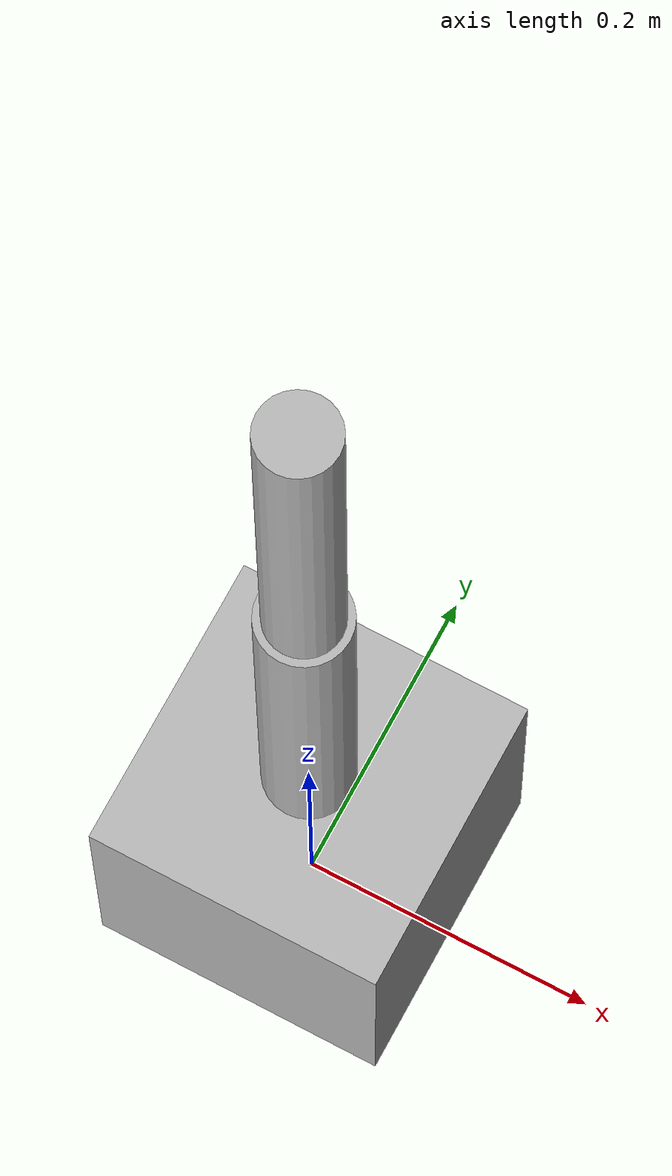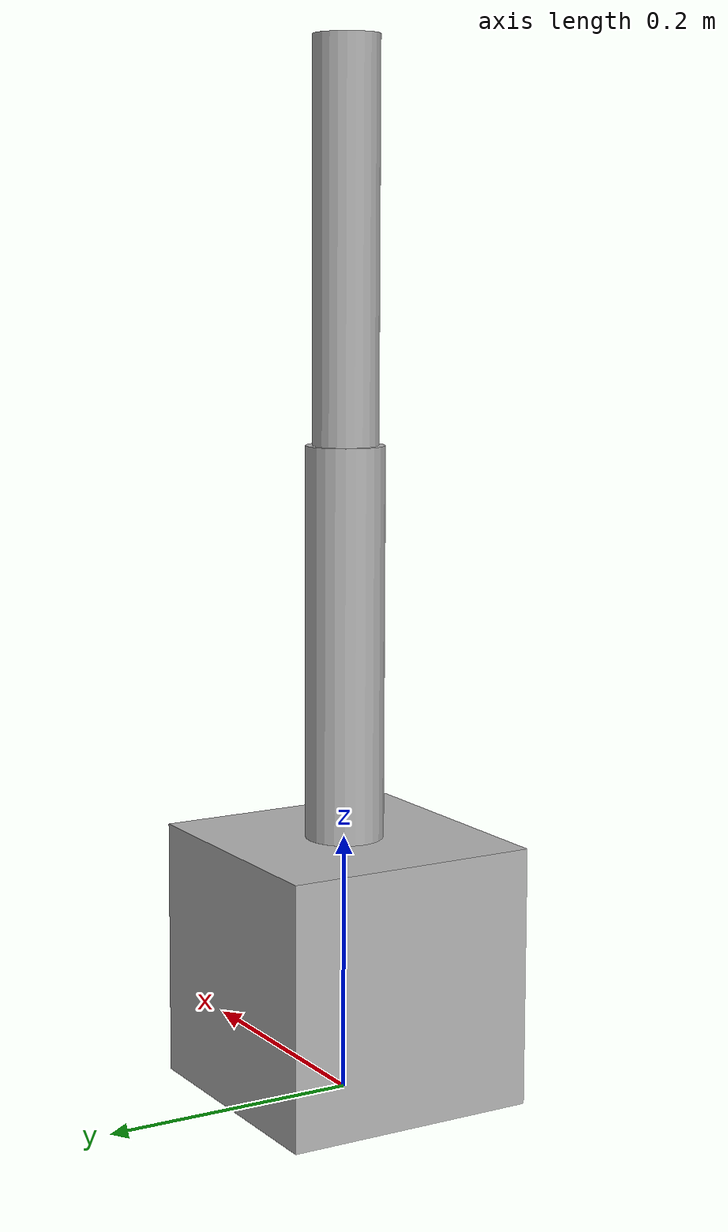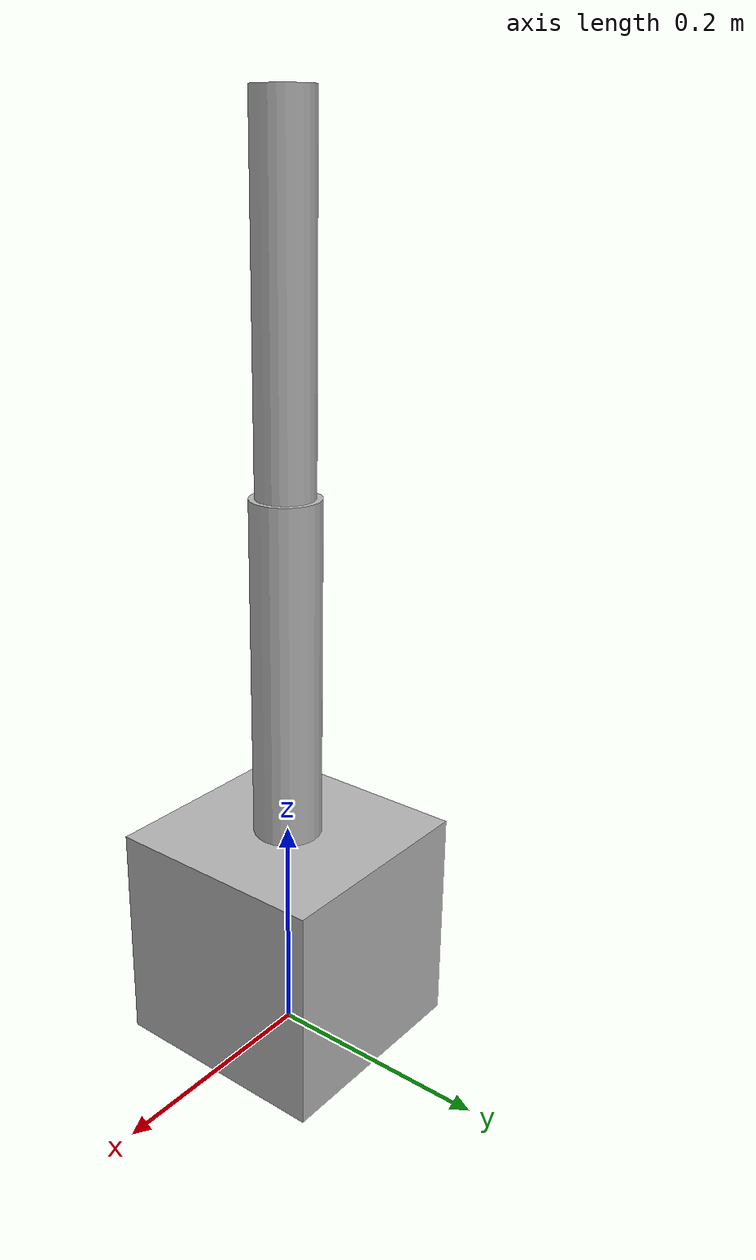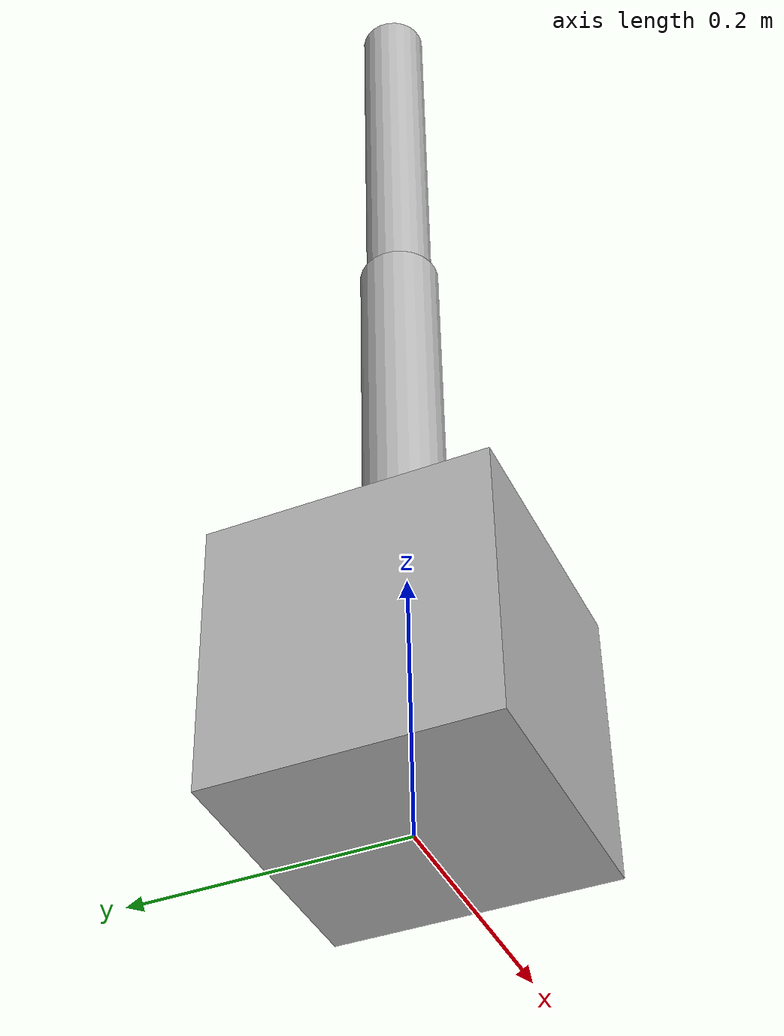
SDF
<sdf version='1.7'>
  <model name='two_dof_arm'>
    <link name='base_link'>
      <inertial>
        <pose>0 0 0 0 -0 0</pose>
        <mass>1</mass>
        <inertia>
          <ixx>0.01</ixx>
          <ixy>0</ixy>
          <ixz>0</ixz>
          <iyy>0.01</iyy>
          <iyz>0</iyz>
          <izz>0.01</izz>
        </inertia>
      </inertial>
      <collision name='base_link_collision'>
        <pose>0 0 0.1 0 -0 0</pose>
        <geometry>
          <box>
            <size>0.2 0.2 0.2</size>
          </box>
        </geometry>
      </collision>
      <visual name='base_link_visual'>
        <pose>0 0 0.1 0 -0 0</pose>
        <geometry>
          <box>
            <size>0.2 0.2 0.2</size>
          </box>
        </geometry>
      </visual>
    </link>
    <joint name='joint1' type='revolute'>
      <pose relative_to='base_link'>0 0 0.2 0 -0 0</pose>
      <parent>base_link</parent>
      <child>link1</child>
      <axis>
        <xyz>0 1 0</xyz>
        <limit>
          <lower>-3.14</lower>
          <upper>3.14</upper>
          <effort>10</effort>
          <velocity>3</velocity>
        </limit>
        <dynamics>
          <spring_reference>0</spring_reference>
          <spring_stiffness>0</spring_stiffness>
        </dynamics>
      </axis>
    </joint>
    <link name='link1'>
      <pose relative_to='joint1'>0 0 0 0 -0 0</pose>
      <inertial>
        <pose>0 0 0.15 0 -0 0</pose>
        <mass>0.5</mass>
        <inertia>
          <ixx>0.005</ixx>
          <ixy>0</ixy>
          <ixz>0</ixz>
          <iyy>0.005</iyy>
          <iyz>0</iyz>
          <izz>0.005</izz>
        </inertia>
      </inertial>
      <collision name='link1_collision'>
        <pose>0 0 0.15 0 -0 0</pose>
        <geometry>
          <cylinder>
            <length>0.3</length>
            <radius>0.03</radius>
          </cylinder>
        </geometry>
      </collision>
      <visual name='link1_visual'>
        <pose>0 0 0.15 0 -0 0</pose>
        <geometry>
          <cylinder>
            <length>0.3</length>
            <radius>0.03</radius>
          </cylinder>
        </geometry>
      </visual>
    </link>
    <joint name='joint2' type='revolute'>
      <pose relative_to='link1'>0 0 0.3 0 -0 0</pose>
      <parent>link1</parent>
      <child>link2</child>
      <axis>
        <xyz>0 1 0</xyz>
        <limit>
          <lower>-2</lower>
          <upper>2</upper>
          <effort>10</effort>
          <velocity>3</velocity>
        </limit>
        <dynamics>
          <spring_reference>0</spring_reference>
          <spring_stiffness>0</spring_stiffness>
        </dynamics>
      </axis>
    </joint>
    <link name='link2'>
      <pose relative_to='joint2'>0 0 0 0 -0 0</pose>
      <inertial>
        <pose>0 0 0.15 0 -0 0</pose>
        <mass>0.3</mass>
        <inertia>
          <ixx>0.003</ixx>
          <ixy>0</ixy>
          <ixz>0</ixz>
          <iyy>0.003</iyy>
          <iyz>0</iyz>
          <izz>0.003</izz>
        </inertia>
      </inertial>
      <collision name='link2_collision'>
        <pose>0 0 0.15 0 -0 0</pose>
        <geometry>
          <cylinder>
            <length>0.3</length>
            <radius>0.025</radius>
          </cylinder>
        </geometry>
      </collision>
      <visual name='link2_visual'>
        <pose>0 0 0.15 0 -0 0</pose>
        <geometry>
          <cylinder>
            <length>0.3</length>
            <radius>0.025</radius>
          </cylinder>
        </geometry>
      </visual>
    </link>
    <static>0</static>
    <plugin name='gazebo_ros2_control' filename='libgazebo_ros2_control.so'>
      <parameters>/home/kristoffer/MAS_ws_public/install/drone_with_arm/share/drone_arm/config/controllers.yaml</parameters>
    </plugin>
  </model>
</sdf>
